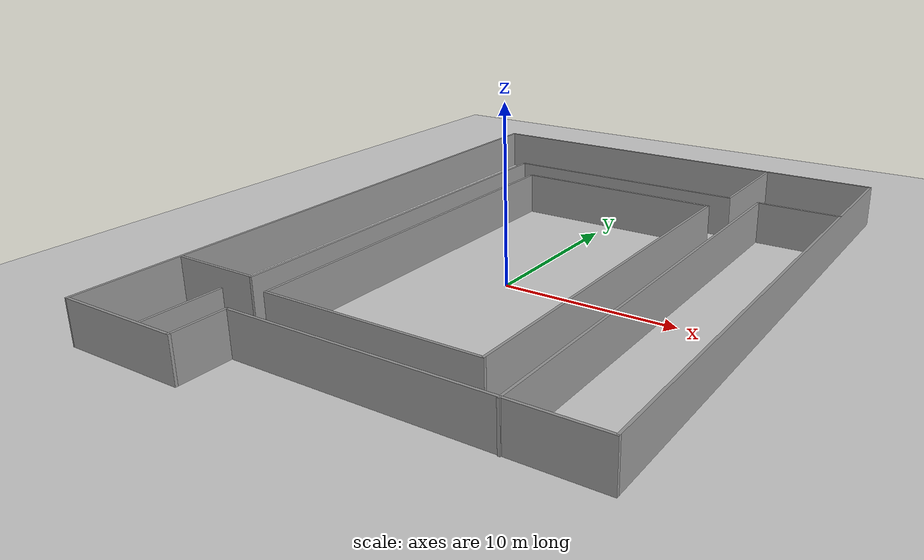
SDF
<sdf version="1.6">
 <world name="default">
  <light name="sun" type="directional">
   <pose>0 0 10 0 -0 0</pose>
   <diffuse>0.8 0.8 0.8 1</diffuse>
   <specular>0.2 0.2 0.2 1</specular>
   <attenuation>
    <range>1000</range>
    <constant>0.9</constant>
    <linear>0.01</linear>
    <quadratic>0.001</quadratic>
   </attenuation>
   <direction>-0.5 0.1 -0.9</direction>
  </light>
  <model name="ground_plane">
   <static>1</static>
   <link name="link">
    <collision name="collision">
     <geometry><plane><normal>0 0 1</normal><size>100 100</size></plane></geometry>
     <surface>
      <contact><collide_bitmask>65535</collide_bitmask></contact>
      <friction><ode><mu>100</mu><mu2>50</mu2></ode></friction>
     </surface>
    </collision>
    <visual name="visual">
     <cast_shadows>0</cast_shadows>
     <geometry><plane><normal>0 0 1</normal><size>100 100</size></plane></geometry>
     <material>
      <script><uri>file://media/materials/scripts/gazebo.material</uri><name>Gazebo/Grey</name></script>
     </material>
    </visual>
   </link>
  </model>
  <gravity>0 0 -9.8</gravity>
  <magnetic_field>6e-06 2.3e-05 -4.2e-05</magnetic_field>
  <atmosphere type="adiabatic"/>
  <physics name="default_physics" default="0" type="ode">
   <max_step_size>0.001</max_step_size>
   <real_time_factor>1</real_time_factor>
   <real_time_update_rate>1000</real_time_update_rate>
  </physics>
  <scene><ambient>0.4 0.4 0.4 1</ambient><background>0.7 0.7 0.7 1</background><shadows>1</shadows></scene>
  <audio><device>default</device></audio>
  <spherical_coordinates>
   <surface_model>EARTH_WGS84</surface_model>
   <latitude_deg>0</latitude_deg>
   <longitude_deg>0</longitude_deg>
   <elevation>0</elevation>
   <heading_deg>0</heading_deg>
  </spherical_coordinates>
  <model name="GGB_lab">
   <pose>0.370049 1.8943 0 0 -0 0</pose>
   <link name="Wall_0">
    <collision name="Wall_0_Collision">
     <geometry><box><size>27 0.15 2.5</size></box></geometry>
     <pose>0 0 1.25 0 -0 0</pose>
    </collision>
    <visual name="Wall_0_Visual">
     <pose>0 0 1.25 0 -0 0</pose>
     <geometry><box><size>27 0.15 2.5</size></box></geometry>
     <material>
      <script><uri>file://media/materials/scripts/gazebo.material</uri><name>Gazebo/Grey</name></script>
      <ambient>1 1 1 1</ambient>
     </material>
     <meta><layer>0</layer></meta>
    </visual>
    <pose>0.000153 18.725 0 0 -0 0</pose>
   </link>
   <link name="Wall_1">
    <collision name="Wall_1_Collision">
     <geometry><box><size>34.5 0.15 2.5</size></box></geometry>
     <pose>0 0 1.25 0 -0 0</pose>
    </collision>
    <visual name="Wall_1_Visual">
     <pose>0 0 1.25 0 -0 0</pose>
     <geometry><box><size>34.5 0.15 2.5</size></box></geometry>
     <material>
      <script><uri>file://media/materials/scripts/gazebo.material</uri><name>Gazebo/Grey</name></script>
      <ambient>1 1 1 1</ambient>
     </material>
     <meta><layer>0</layer></meta>
    </visual>
    <pose>13.4251 1.55001 0 0 -0 -1.5708</pose>
   </link>
   <link name="Wall_10">
    <collision name="Wall_10_Collision">
     <geometry><box><size>15 0.15 2.5</size></box></geometry>
     <pose>0 0 1.25 0 -0 0</pose>
    </collision>
    <visual name="Wall_10_Visual">
     <pose>0 0 1.25 0 -0 0</pose>
     <geometry><box><size>15 0.15 2.5</size></box></geometry>
     <material>
      <script><uri>file://media/materials/scripts/gazebo.material</uri><name>Gazebo/Grey</name></script>
      <ambient>1 1 1 1</ambient>
     </material>
     <meta><layer>0</layer></meta>
    </visual>
    <pose>-0.683052 11.9115 0 0 -0 3.14159</pose>
   </link>
   <link name="Wall_11">
    <collision name="Wall_11_Collision">
     <geometry><box><size>24.5 0.15 2.5</size></box></geometry>
     <pose>0 0 1.25 0 -0 0</pose>
    </collision>
    <visual name="Wall_11_Visual">
     <pose>0 0 1.25 0 -0 0</pose>
     <geometry><box><size>24.5 0.15 2.5</size></box></geometry>
     <material>
      <script><uri>file://media/materials/scripts/gazebo.material</uri><name>Gazebo/Grey</name></script>
      <ambient>1 1 1 1</ambient>
     </material>
     <meta><layer>0</layer></meta>
    </visual>
    <pose>-8.10805 -0.263517 0 0 -0 -1.5708</pose>
   </link>
   <link name="Wall_12">
    <collision name="Wall_12_Collision">
     <geometry><box><size>5.25 0.15 2.5</size></box></geometry>
     <pose>0 0 1.25 0 -0 0</pose>
    </collision>
    <visual name="Wall_12_Visual">
     <pose>0 0 1.25 0 -0 0</pose>
     <geometry><box><size>5.25 0.15 2.5</size></box></geometry>
     <material>
      <script><uri>file://media/materials/scripts/gazebo.material</uri><name>Gazebo/Grey</name></script>
      <ambient>1 1 1 1</ambient>
     </material>
     <meta><layer>0</layer></meta>
    </visual>
    <pose>-10.6581 -12.4385 0 0 -0 3.14159</pose>
   </link>
   <link name="Wall_14">
    <collision name="Wall_14_Collision">
     <geometry><box><size>4.5 0.15 2.5</size></box></geometry>
     <pose>0 0 1.25 0 -0 0</pose>
    </collision>
    <visual name="Wall_14_Visual">
     <pose>0 0 1.25 0 -0 0</pose>
     <geometry><box><size>4.5 0.15 2.5</size></box></geometry>
     <material>
      <script><uri>file://media/materials/scripts/gazebo.material</uri><name>Gazebo/Grey</name></script>
      <ambient>1 1 1 1</ambient>
     </material>
     <meta><layer>0</layer></meta>
    </visual>
    <pose>-8.22346 -16.4226 0 0 -0 -1.5708</pose>
   </link>
   <link name="Wall_16">
    <collision name="Wall_16_Collision">
     <geometry><box><size>6.75 0.15 2.5</size></box></geometry>
     <pose>0 0 1.25 0 -0 0</pose>
    </collision>
    <visual name="Wall_16_Visual">
     <pose>0 0 1.25 0 -0 0</pose>
     <geometry><box><size>6.75 0.15 2.5</size></box></geometry>
     <material>
      <script><uri>file://media/materials/scripts/gazebo.material</uri><name>Gazebo/Grey</name></script>
      <ambient>1 1 1 1</ambient>
     </material>
     <meta><layer>0</layer></meta>
    </visual>
    <pose>6.74195 15.2115 0 0 -0 1.5708</pose>
   </link>
   <link name="Wall_18">
    <collision name="Wall_18_Collision">
     <geometry><box><size>12.5 0.15 2.5</size></box></geometry>
     <pose>0 0 1.25 0 -0 0</pose>
    </collision>
    <visual name="Wall_18_Visual">
     <pose>0 0 1.25 0 -0 0</pose>
     <geometry><box><size>12.5 0.15 2.5</size></box></geometry>
     <material>
      <script><uri>file://media/materials/scripts/gazebo.material</uri><name>Gazebo/Grey</name></script>
      <ambient>1 1 1 1</ambient>
     </material>
     <meta><layer>0</layer></meta>
    </visual>
    <pose>0.050346 9.72142 0 0 -0 0</pose>
   </link>
   <link name="Wall_19">
    <collision name="Wall_19_Collision">
     <geometry><box><size>23.25 0.15 2.5</size></box></geometry>
     <pose>0 0 1.25 0 -0 0</pose>
    </collision>
    <visual name="Wall_19_Visual">
     <pose>0 0 1.25 0 -0 0</pose>
     <geometry><box><size>23.25 0.15 2.5</size></box></geometry>
     <material>
      <script><uri>file://media/materials/scripts/gazebo.material</uri><name>Gazebo/Grey</name></script>
      <ambient>1 1 1 1</ambient>
     </material>
     <meta><layer>0</layer></meta>
    </visual>
    <pose>6.22535 -1.82858 0 0 -0 -1.5708</pose>
   </link>
   <link name="Wall_2">
    <collision name="Wall_2_Collision">
     <geometry><box><size>19.75 0.15 2.5</size></box></geometry>
     <pose>0 0 1.25 0 -0 0</pose>
    </collision>
    <visual name="Wall_2_Visual">
     <pose>0 0 1.25 0 -0 0</pose>
     <geometry><box><size>19.75 0.15 2.5</size></box></geometry>
     <material>
      <script><uri>file://media/materials/scripts/gazebo.material</uri><name>Gazebo/Grey</name></script>
      <ambient>1 1 1 1</ambient>
     </material>
     <meta><layer>0</layer></meta>
    </visual>
    <pose>3.62515 -15.625 0 0 -0 3.14159</pose>
   </link>
   <link name="Wall_20">
    <collision name="Wall_20_Collision">
     <geometry><box><size>12.5 0.15 2.5</size></box></geometry>
     <pose>0 0 1.25 0 -0 0</pose>
    </collision>
    <visual name="Wall_20_Visual">
     <pose>0 0 1.25 0 -0 0</pose>
     <geometry><box><size>12.5 0.15 2.5</size></box></geometry>
     <material>
      <script><uri>file://media/materials/scripts/gazebo.material</uri><name>Gazebo/Grey</name></script>
      <ambient>1 1 1 1</ambient>
     </material>
     <meta><layer>0</layer></meta>
    </visual>
    <pose>0.050346 -13.3786 0 0 -0 3.14159</pose>
   </link>
   <link name="Wall_21">
    <collision name="Wall_21_Collision">
     <geometry><box><size>23.25 0.15 2.5</size></box></geometry>
     <pose>0 0 1.25 0 -0 0</pose>
    </collision>
    <visual name="Wall_21_Visual">
     <pose>0 0 1.25 0 -0 0</pose>
     <geometry><box><size>23.25 0.15 2.5</size></box></geometry>
     <material>
      <script><uri>file://media/materials/scripts/gazebo.material</uri><name>Gazebo/Grey</name></script>
      <ambient>1 1 1 1</ambient>
     </material>
     <meta><layer>0</layer></meta>
    </visual>
    <pose>-6.12465 -1.82858 0 0 -0 1.5708</pose>
   </link>
   <link name="Wall_23">
    <collision name="Wall_23_Collision">
     <geometry><box><size>27.75 0.15 2.5</size></box></geometry>
     <pose>0 0 1.25 0 -0 0</pose>
    </collision>
    <visual name="Wall_23_Visual">
     <pose>0 0 1.25 0 -0 0</pose>
     <geometry><box><size>27.75 0.15 2.5</size></box></geometry>
     <material>
      <script><uri>file://media/materials/scripts/gazebo.material</uri><name>Gazebo/Grey</name></script>
      <ambient>1 1 1 1</ambient>
     </material>
     <meta><layer>0</layer></meta>
    </visual>
    <pose>8.55338 -1.88852 0 0 -0 -1.5708</pose>
   </link>
   <link name="Wall_3">
    <collision name="Wall_3_Collision">
     <geometry><box><size>3.25 0.15 2.5</size></box></geometry>
     <pose>0 0 1.25 0 -0 0</pose>
    </collision>
    <visual name="Wall_3_Visual">
     <pose>0 0 1.25 0 -0 0</pose>
     <geometry><box><size>3.25 0.15 2.5</size></box></geometry>
     <material>
      <script><uri>file://media/materials/scripts/gazebo.material</uri><name>Gazebo/Grey</name></script>
      <ambient>1 1 1 1</ambient>
     </material>
     <meta><layer>0</layer></meta>
    </visual>
    <pose>-6.17485 -17.175 0 0 -0 -1.5708</pose>
   </link>
   <link name="Wall_4">
    <collision name="Wall_4_Collision">
     <geometry><box><size>7.25 0.15 2.5</size></box></geometry>
     <pose>0 0 1.25 0 -0 0</pose>
    </collision>
    <visual name="Wall_4_Visual">
     <pose>0 0 1.25 0 -0 0</pose>
     <geometry><box><size>7.25 0.15 2.5</size></box></geometry>
     <material>
      <script><uri>file://media/materials/scripts/gazebo.material</uri><name>Gazebo/Grey</name></script>
      <ambient>1 1 1 1</ambient>
     </material>
     <meta><layer>0</layer></meta>
    </visual>
    <pose>-9.72485 -18.725 0 0 -0 3.14159</pose>
   </link>
   <link name="Wall_5">
    <collision name="Wall_5_Collision">
     <geometry><box><size>37.6003 0.15 2.5</size></box></geometry>
     <pose>0 0 1.25 0 -0 0</pose>
    </collision>
    <visual name="Wall_5_Visual">
     <pose>0 0 1.25 0 -0 0</pose>
     <geometry><box><size>37.6003 0.15 2.5</size></box></geometry>
     <material>
      <script><uri>file://media/materials/scripts/gazebo.material</uri><name>Gazebo/Grey</name></script>
      <ambient>1 1 1 1</ambient>
     </material>
     <meta><layer>0</layer></meta>
    </visual>
    <pose>-13.3498 2e-06 0 0 -0 1.5748</pose>
   </link>
   <link name="Wall_7">
    <collision name="Wall_7_Collision">
     <geometry><box><size>5 0.15 2.5</size></box></geometry>
     <pose>0 0 1.25 0 -0 0</pose>
    </collision>
    <visual name="Wall_7_Visual">
     <pose>0 0 1.25 0 -0 0</pose>
     <geometry><box><size>5 0.15 2.5</size></box></geometry>
     <material>
      <script><uri>file://media/materials/scripts/gazebo.material</uri><name>Gazebo/Grey</name></script>
      <ambient>1 1 1 1</ambient>
     </material>
     <meta><layer>0</layer></meta>
    </visual>
    <pose>10.9784 11.9115 0 0 -0 3.14159</pose>
   </link>
   <static>1</static>
  </model>
  <model name="6_Cube_StorageE">
   <link name="Wall_0">
    <pose>0 0 0.01 0 -0 0</pose>
    <inertial>
     <mass>1.6201</mass>
     <inertia><ixx>0.0119</ixx><iyy>0.0631</iyy><izz>0.0513</izz><ixy>0</ixy><ixz>0</ixz><iyz>0</iyz></inertia>
    </inertial>
    <collision name="Wall_0_Collision"><geometry><box><size>0.616 0.296 0.02</size></box></geometry></collision>
    <visual name="Wall_0_Visual">
     <geometry><box><size>0.616 0.296 0.02</size></box></geometry>
     <material>
      <script><uri>file://media/materials/scripts/gazebo.material</uri><name>Gazebo/Grey</name></script>
      <ambient>0.105882 0.0509804 0 1</ambient>
     </material>
    </visual>
   </link>
   <joint name="0_2" type="fixed">
    <pose>-0.308 0 0 0 -0 0</pose>
    <parent>Wall_2</parent>
    <child>Wall_0</child>
    <axis>
     <xyz>1 0 0</xyz>
     <use_parent_model_frame>0</use_parent_model_frame>
     <limit><lower>-1e+16</lower><upper>1e+16</upper></limit>
    </axis>
   </joint>
   <joint name="0_12" type="fixed">
    <parent>Wall_12</parent>
    <child>Wall_0</child>
    <axis>
     <xyz>0 0 1</xyz>
     <use_parent_model_frame>0</use_parent_model_frame>
     <limit><lower>-1e+16</lower><upper>1e+16</upper></limit>
    </axis>
   </joint>
   <joint name="0_4" type="fixed">
    <pose>0.308 0 0 0 -0 0</pose>
    <parent>Wall_4</parent>
    <child>Wall_0</child>
    <axis>
     <xyz>1 0 0</xyz>
     <use_parent_model_frame>0</use_parent_model_frame>
     <limit><lower>-1e+16</lower><upper>1e+16</upper></limit>
    </axis>
   </joint>
   <link name="Wall_10">
    <pose>0 0 0.61 0 -0 0</pose>
    <inertial>
     <mass>1.6201</mass>
     <inertia><ixx>0.0119</ixx><iyy>0.0631</iyy><izz>0.0513</izz><ixy>0</ixy><ixz>0</ixz><iyz>0</iyz></inertia>
    </inertial>
    <collision name="Wall_10_Collision"><geometry><box><size>0.616 0.296 0.02</size></box></geometry></collision>
    <visual name="Wall_10_Visual">
     <geometry><box><size>0.616 0.296 0.02</size></box></geometry>
     <material>
      <script><uri>file://media/materials/scripts/gazebo.material</uri><name>Gazebo/Grey</name></script>
      <ambient>0.105882 0.0509804 0 1</ambient>
     </material>
    </visual>
   </link>
   <joint name="10_2" type="fixed">
    <pose>-0.308 0 0 0 -0 0</pose>
    <parent>Wall_2</parent>
    <child>Wall_10</child>
    <axis>
     <xyz>1 0 0</xyz>
     <use_parent_model_frame>0</use_parent_model_frame>
     <limit><lower>-1e+16</lower><upper>1e+16</upper></limit>
    </axis>
   </joint>
   <joint name="10_12" type="fixed">
    <parent>Wall_12</parent>
    <child>Wall_10</child>
    <axis>
     <xyz>0 0 1</xyz>
     <use_parent_model_frame>0</use_parent_model_frame>
     <limit><lower>-1e+16</lower><upper>1e+16</upper></limit>
    </axis>
   </joint>
   <joint name="10_4" type="fixed">
    <pose>0.308 0 0 0 -0 0</pose>
    <parent>Wall_4</parent>
    <child>Wall_10</child>
    <axis>
     <xyz>1 0 0</xyz>
     <use_parent_model_frame>0</use_parent_model_frame>
     <limit><lower>-1e+16</lower><upper>1e+16</upper></limit>
    </axis>
   </joint>
   <link name="Wall_12">
    <pose>0 0 0.4575 0 -0 0</pose>
    <inertial>
     <mass>2.4065</mass>
     <inertia><ixx>0.0177</ixx><iyy>0.1855</iyy><izz>0.168</izz><ixy>0</ixy><ixz>0</ixz><iyz>0</iyz></inertia>
    </inertial>
    <collision name="Wall_12_Collision"><geometry><box><size>0.02 0.296 0.915</size></box></geometry></collision>
    <visual name="Wall_12_Visual">
     <geometry><box><size>0.02 0.296 0.915</size></box></geometry>
     <material>
      <script><uri>file://media/materials/scripts/gazebo.material</uri><name>Gazebo/Grey</name></script>
      <ambient>0.105882 0.0509804 0 1</ambient>
     </material>
    </visual>
   </link>
   <link name="Wall_2">
    <pose>-0.298 0 0.4575 0 -0 0</pose>
    <inertial>
     <mass>2.4065</mass>
     <inertia><ixx>0.0177</ixx><iyy>0.1855</iyy><izz>0.168</izz><ixy>0</ixy><ixz>0</ixz><iyz>0</iyz></inertia>
    </inertial>
    <collision name="Wall_2_Collision"><geometry><box><size>0.02 0.296 0.915</size></box></geometry></collision>
    <visual name="Wall_2_Visual">
     <geometry><box><size>0.02 0.296 0.915</size></box></geometry>
     <material>
      <script><uri>file://media/materials/scripts/gazebo.material</uri><name>Gazebo/Grey</name></script>
      <ambient>0.105882 0.0509804 0 1</ambient>
     </material>
    </visual>
   </link>
   <link name="Wall_4">
    <pose>0.298 0 0.4575 0 -0 0</pose>
    <inertial>
     <mass>2.4065</mass>
     <inertia><ixx>0.0177</ixx><iyy>0.1855</iyy><izz>0.168</izz><ixy>0</ixy><ixz>0</ixz><iyz>0</iyz></inertia>
    </inertial>
    <collision name="Wall_4_Collision"><geometry><box><size>0.02 0.296 0.915</size></box></geometry></collision>
    <visual name="Wall_4_Visual">
     <geometry><box><size>0.02 0.296 0.915</size></box></geometry>
     <material>
      <script><uri>file://media/materials/scripts/gazebo.material</uri><name>Gazebo/Grey</name></script>
      <ambient>0.105882 0.0509804 0 1</ambient>
     </material>
    </visual>
   </link>
   <link name="Wall_6">
    <pose>0 0 0.905 0 -0 0</pose>
    <inertial>
     <mass>1.6201</mass>
     <inertia><ixx>0.0119</ixx><iyy>0.0631</iyy><izz>0.0513</izz><ixy>0</ixy><ixz>0</ixz><iyz>0</iyz></inertia>
    </inertial>
    <collision name="Wall_6_Collision"><geometry><box><size>0.616 0.296 0.02</size></box></geometry></collision>
    <visual name="Wall_6_Visual">
     <geometry><box><size>0.616 0.296 0.02</size></box></geometry>
     <material>
      <script><uri>file://media/materials/scripts/gazebo.material</uri><name>Gazebo/Grey</name></script>
      <ambient>0.105882 0.0509804 0 1</ambient>
     </material>
    </visual>
   </link>
   <joint name="6_2" type="fixed">
    <pose>-0.308 0 0 0 -0 0</pose>
    <parent>Wall_2</parent>
    <child>Wall_6</child>
    <axis>
     <xyz>2 0 0</xyz>
     <use_parent_model_frame>0</use_parent_model_frame>
     <limit><lower>-1e+16</lower><upper>1e+16</upper></limit>
    </axis>
   </joint>
   <joint name="6_12" type="fixed">
    <parent>Wall_12</parent>
    <child>Wall_6</child>
    <axis>
     <xyz>0 0 1</xyz>
     <use_parent_model_frame>0</use_parent_model_frame>
     <limit><lower>-1e+16</lower><upper>1e+16</upper></limit>
    </axis>
   </joint>
   <joint name="6_4" type="fixed">
    <pose>0.308 0 0 0 -0 0</pose>
    <parent>Wall_4</parent>
    <child>Wall_6</child>
    <axis>
     <xyz>1 0 0</xyz>
     <use_parent_model_frame>0</use_parent_model_frame>
     <limit><lower>-1e+16</lower><upper>1e+16</upper></limit>
    </axis>
   </joint>
   <link name="Wall_8">
    <pose>0 0 0.305 0 -0 0</pose>
    <inertial>
     <mass>1.6201</mass>
     <inertia><ixx>0.0119</ixx><iyy>0.0631</iyy><izz>0.0513</izz><ixy>0</ixy><ixz>0</ixz><iyz>0</iyz></inertia>
    </inertial>
    <collision name="Wall_8_Collision"><geometry><box><size>0.616 0.296 0.02</size></box></geometry></collision>
    <visual name="Wall_8_Visual">
     <geometry><box><size>0.616 0.296 0.02</size></box></geometry>
     <material>
      <script><uri>file://media/materials/scripts/gazebo.material</uri><name>Gazebo/Grey</name></script>
      <ambient>0.105882 0.0509804 0 1</ambient>
     </material>
    </visual>
   </link>
   <joint name="8_2" type="fixed">
    <pose>-0.308 0 0 0 -0 0</pose>
    <parent>Wall_2</parent>
    <child>Wall_8</child>
    <axis>
     <xyz>1 0 0</xyz>
     <use_parent_model_frame>0</use_parent_model_frame>
     <limit><lower>-1e+16</lower><upper>1e+16</upper></limit>
    </axis>
   </joint>
   <joint name="8_12" type="fixed">
    <parent>Wall_12</parent>
    <child>Wall_8</child>
    <axis>
     <xyz>0 0 1</xyz>
     <use_parent_model_frame>0</use_parent_model_frame>
     <limit><lower>-1e+16</lower><upper>1e+16</upper></limit>
    </axis>
   </joint>
   <joint name="8_4" type="fixed">
    <pose>0.308 0 0 0 -0 0</pose>
    <parent>Wall_4</parent>
    <child>Wall_8</child>
    <axis>
     <xyz>1 0 0</xyz>
     <use_parent_model_frame>0</use_parent_model_frame>
     <limit><lower>-1e+16</lower><upper>1e+16</upper></limit>
    </axis>
   </joint>
   <static>1</static>
   <pose>5.04359 11.9035 0 0 -0 0</pose>
  </model>
 </world>
</sdf>
